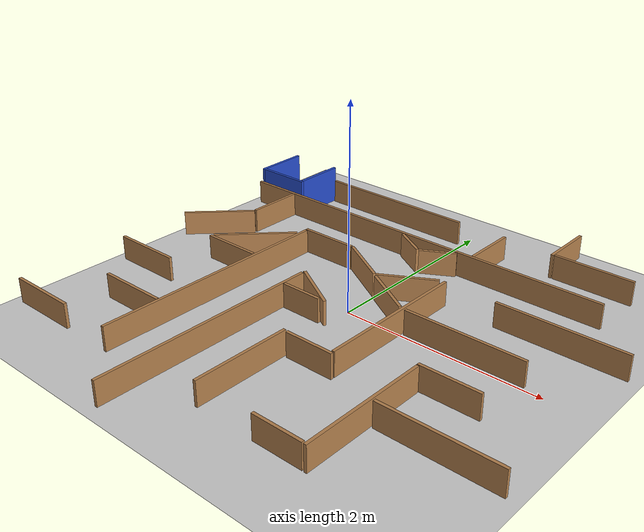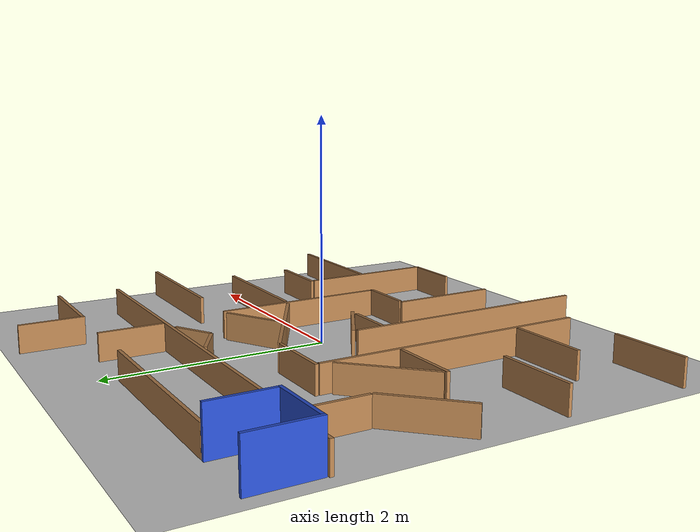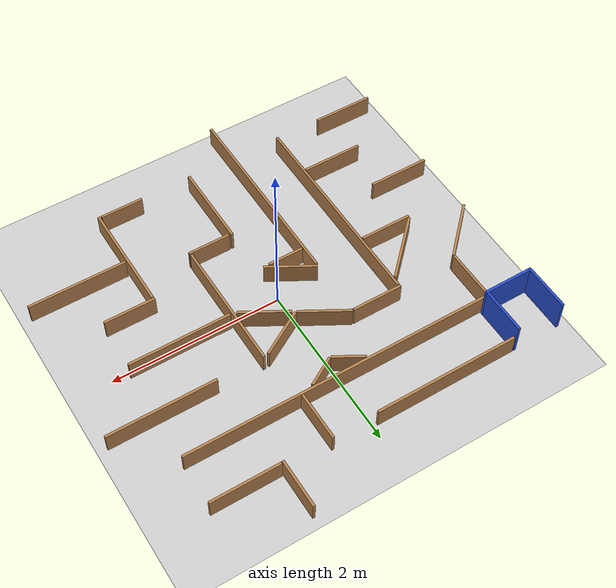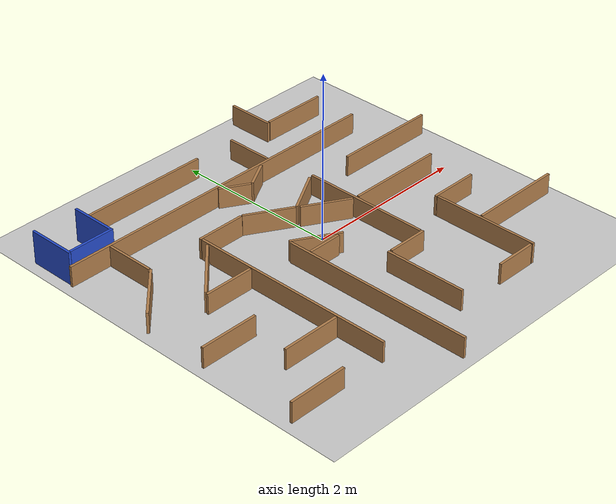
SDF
<?xml version="1.0"?>
<sdf version="1.4">
<model name="maze_nav_alt">
  <static>true</static>
    <link name="floor">
      <collision name="collision">
        <geometry>
          <plane>
            <normal>0 0 1</normal>
            <size>5.0 5.0</size>
          </plane>
        </geometry>
        <surface>
          <friction>
            <ode>
              <mu>100</mu>
              <mu2>50</mu2>
            </ode>
          </friction>
        </surface>
      </collision>
      <visual name="visual">
        <cast_shadows>false</cast_shadows>
        <geometry>
          <plane>
            <normal>0 0 1</normal>
            <size>5.0 5.0</size>
          </plane>
        </geometry>
        <material>
          <script>
            <uri>model://maze_nav_alt/materials/scripts</uri>
            <uri>model://maze_nav_alt/materials/textures</uri>
            <name>MazeNavAltFloor/Image</name>
          </script>
        </material>
      </visual>
    </link>
    <link name='start_zone'>
      <pose frame=''>-2.07315 1.57160 0.2 0 0 1.571</pose>
      <collision name='Right_Wall_Collision'>
        <geometry>
          <box>
            <size>0.57 0.03 0.4</size>
          </box>
        </geometry>
        <pose frame=''>0 0.2850 0 0 0 0</pose>
      </collision>
      <visual name='Right_Wall_Visual'>
        <pose frame=''>0 0.2850 0 0 0 0</pose>
        <geometry>
          <box>
            <size>0.57 0.03 0.4</size>
          </box>
        </geometry>
        <material>
          <script>
            <uri>file://media/materials/scripts/gazebo.material</uri>
            <name>Gazebo/Blue</name>
          </script>
        </material>
      </visual>
      <collision name='Back_Wall_Collision'>
        <geometry>
          <box>
            <size>0.57 0.03 0.4</size>
          </box>
        </geometry>
        <pose frame=''>-0.27 -0.015 0 0 0 1.571</pose>
      </collision>
      <visual name='Back_Wall_Visual'>
        <pose frame=''>-0.27 -0.015 0 0 0 1.571</pose>
        <geometry>
          <box>
            <size>0.57 0.03 0.4</size>
          </box>
        </geometry>
        <material>
          <script>
            <uri>file://media/materials/scripts/gazebo.material</uri>
            <name>Gazebo/Blue</name>
          </script>
        </material>
      </visual>
      <collision name='Left_Wall_Collision'>
        <geometry>
          <box>
            <size>0.54 0.03 0.4</size>
          </box>
        </geometry>
        <pose frame=''>0.015 -0.285 0 0 0 0</pose>
      </collision>
      <visual name='Left_Wall_Visual'>
        <pose frame=''>0.015 -0.285 0 0 0 0</pose>
        <geometry>
          <box>
            <size>0.54 0.03 0.4</size>
          </box>
        </geometry>
        <material>
          <script>
            <uri>file://media/materials/scripts/gazebo.material</uri>
            <name>Gazebo/Blue</name>
          </script>
        </material>
      </visual>
    </link>
    <link name='wall_00'>
      <pose frame=''>-0.90794 1.84160 0.125 0 0 0</pose>
      <collision name='coll'>
        <geometry>
          <box>
            <size>1.70 0.03 0.25</size>
          </box>
        </geometry>
      </collision>
      <visual name='vis'>
        <geometry>
          <box>
            <size>1.70 0.03 0.25</size>
          </box>
        </geometry>
        <material>
          <script>
            <uri>file://media/materials/scripts/gazebo.material</uri>
            <name>Gazebo/Wood</name>
          </script>
        </material>
      </visual>
    </link>
    <link name='wall_01'>
      <pose frame=''>-0.27063 1.26271 0.125 0 0 0</pose>
      <collision name='coll'>
        <geometry>
          <box>
            <size>4.23 0.03 0.25</size>
          </box>
        </geometry>
      </collision>
      <visual name='vis'>
        <geometry>
          <box>
            <size>4.23 0.03 0.25</size>
          </box>
        </geometry>
        <material>
          <script>
            <uri>file://media/materials/scripts/gazebo.material</uri>
            <name>Gazebo/Wood</name>
          </script>
        </material>
      </visual>
    </link>
    <link name='wall_02'>
      <pose frame=''>0.47706 1.56910 0.125 0 0 1.571</pose>
      <collision name='coll'>
        <geometry>
          <box>
            <size>0.575 0.03 0.25</size>
          </box>
        </geometry>
      </collision>
      <visual name='vis'>
        <geometry>
          <box>
            <size>0.575 0.03 0.25</size>
          </box>
        </geometry>
        <material>
          <script>
            <uri>file://media/materials/scripts/gazebo.material</uri>
            <name>Gazebo/Wood</name>
          </script>
        </material>
      </visual>
    </link>
    <link name='wall_03'>
      <pose frame=''>1.03136 2.09759 0.125 0 0 1.571</pose>
      <collision name='coll'>
        <geometry>
          <box>
            <size>0.57 0.03 0.25</size>
          </box>
        </geometry>
      </collision>
      <visual name='vis'>
        <geometry>
          <box>
            <size>0.57 0.03 0.25</size>
          </box>
        </geometry>
        <material>
          <script>
            <uri>file://media/materials/scripts/gazebo.material</uri>
            <name>Gazebo/Wood</name>
          </script>
        </material>
      </visual>
    </link>
    <link name='wall_04'>
      <pose frame=''>1.46037 1.82759 0.125 0 0 0</pose>
      <collision name='coll'>
        <geometry>
          <box>
            <size>0.81 0.03 0.25</size>
          </box>
        </geometry>
      </collision>
      <visual name='vis'>
        <geometry>
          <box>
            <size>0.81 0.03 0.25</size>
          </box>
        </geometry>
        <material>
          <script>
            <uri>file://media/materials/scripts/gazebo.material</uri>
            <name>Gazebo/Wood</name>
          </script>
        </material>
      </visual>
    </link>
    <link name='wall_06'>
      <pose frame=''>0.16822 1.14092 0.125 0 0 0.524</pose>
      <collision name='coll'>
        <geometry>
          <box>
            <size>0.37 0.03 0.25</size>
          </box>
        </geometry>
      </collision>
      <visual name='vis'>
        <geometry>
          <box>
            <size>0.37 0.03 0.25</size>
          </box>
        </geometry>
        <material>
          <script>
            <uri>file://media/materials/scripts/gazebo.material</uri>
            <name>Gazebo/Wood</name>
          </script>
        </material>
      </visual>
    </link>
    <link name='wall_07'>
      <pose frame=''>-0.16822 1.14092 0.125 0 0 -0.524</pose>
      <collision name='coll'>
        <geometry>
          <box>
            <size>0.37 0.03 0.25</size>
          </box>
        </geometry>
      </collision>
      <visual name='vis'>
        <geometry>
          <box>
            <size>0.37 0.03 0.25</size>
          </box>
        </geometry>
        <material>
          <script>
            <uri>file://media/materials/scripts/gazebo.material</uri>
            <name>Gazebo/Wood</name>
          </script>
        </material>
      </visual>
    </link>
    <link name='wall_08'>
      <pose frame=''>-1.85618 0.94927 0.125 0 0 0</pose>
      <collision name='coll'>
        <geometry>
          <box>
            <size>0.03 0.59 0.25</size>
          </box>
        </geometry>
      </collision>
      <visual name='vis'>
        <geometry>
          <box>
            <size>0.03 0.59 0.25</size>
          </box>
        </geometry>
        <material>
          <script>
            <uri>file://media/materials/scripts/gazebo.material</uri>
            <name>Gazebo/Wood</name>
          </script>
        </material>
      </visual>
    </link>
    <link name='wall_09'>
      <pose frame=''>-2.11341 0.37776 0.125 0 0 0.786</pose>
      <collision name='coll'>
        <geometry>
          <box>
            <size>0.74 0.03 0.25</size>
          </box>
        </geometry>
      </collision>
      <visual name='vis'>
        <geometry>
          <box>
            <size>0.74 0.03 0.25</size>
          </box>
        </geometry>
        <material>
          <script>
            <uri>file://media/materials/scripts/gazebo.material</uri>
            <name>Gazebo/Wood</name>
          </script>
        </material>
      </visual>
    </link>
    <link name='wall_0A'>
      <pose frame=''>-1.44489 0.24998 0.125 0 0 0.786</pose>
      <collision name='coll'>
        <geometry>
          <box>
            <size>0.84 0.03 0.25</size>
          </box>
        </geometry>
      </collision>
      <visual name='vis'>
        <geometry>
          <box>
            <size>0.84 0.03 0.25</size>
          </box>
        </geometry>
        <material>
          <script>
            <uri>file://media/materials/scripts/gazebo.material</uri>
            <name>Gazebo/Wood</name>
          </script>
        </material>
      </visual>
    </link>
    <link name='wall_0B'>
      <pose frame=''>-1.11688 -0.60361 0.125 0 0 0</pose>
      <collision name='coll'>
        <geometry>
          <box>
            <size>0.03 2.51 0.25</size>
          </box>
        </geometry>
      </collision>
      <visual name='vis'>
        <geometry>
          <box>
            <size>0.03 2.51 0.25</size>
          </box>
        </geometry>
        <material>
          <script>
            <uri>file://media/materials/scripts/gazebo.material</uri>
            <name>Gazebo/Wood</name>
          </script>
        </material>
      </visual>
    </link>
    <link name='wall_0C'>
      <pose frame=''>-0.83188 0.67462 0.125 0 0 0</pose>
      <collision name='coll'>
        <geometry>
          <box>
            <size>0.60 0.03 0.25</size>
          </box>
        </geometry>
      </collision>
      <visual name='vis'>
        <geometry>
          <box>
            <size>0.60 0.03 0.25</size>
          </box>
        </geometry>
        <material>
          <script>
            <uri>file://media/materials/scripts/gazebo.material</uri>
            <name>Gazebo/Wood</name>
          </script>
        </material>
      </visual>
    </link>
    <link name='wall_0D'>
      <pose frame=''>-0.26349 0.52913 0.125 0 0 -0.524</pose>
      <collision name='coll'>
        <geometry>
          <box>
            <size>0.59 0.03 0.25</size>
          </box>
        </geometry>
      </collision>
      <visual name='vis'>
        <geometry>
          <box>
            <size>0.59 0.03 0.25</size>
          </box>
        </geometry>
        <material>
          <script>
            <uri>file://media/materials/scripts/gazebo.material</uri>
            <name>Gazebo/Wood</name>
          </script>
        </material>
      </visual>
    </link>
    <link name='wall_0E'>
      <pose frame=''>0.26349 0.52913 0.125 0 0 0.524</pose>
      <collision name='coll'>
        <geometry>
          <box>
            <size>0.59 0.03 0.25</size>
          </box>
        </geometry>
      </collision>
      <visual name='vis'>
        <geometry>
          <box>
            <size>0.59 0.03 0.25</size>
          </box>
        </geometry>
        <material>
          <script>
            <uri>file://media/materials/scripts/gazebo.material</uri>
            <name>Gazebo/Wood</name>
          </script>
        </material>
      </visual>
    </link>
    <link name='wall_0F'>
      <pose frame=''>1.75188 0.67462 0.125 0 0 0</pose>
      <collision name='coll'>
        <geometry>
          <box>
            <size>1.27 0.03 0.25</size>
          </box>
        </geometry>
      </collision>
      <visual name='vis'>
        <geometry>
          <box>
            <size>1.27 0.03 0.25</size>
          </box>
        </geometry>
        <material>
          <script>
            <uri>file://media/materials/scripts/gazebo.material</uri>
            <name>Gazebo/Wood</name>
          </script>
        </material>
      </visual>
    </link>
    <link name='wall_15'>
      <pose frame=''>-1.44748 -0.07483 0.125 0 0 0</pose>
      <collision name='coll'>
        <geometry>
          <box>
            <size>0.61 0.03 0.25</size>
          </box>
        </geometry>
      </collision>
      <visual name='vis'>
        <geometry>
          <box>
            <size>0.61 0.03 0.25</size>
          </box>
        </geometry>
        <material>
          <script>
            <uri>file://media/materials/scripts/gazebo.material</uri>
            <name>Gazebo/Wood</name>
          </script>
        </material>
      </visual>
    </link>
    <link name='wall_17'>
      <pose frame=''>-2.02647 -0.66676 0.125 0 0 0</pose>
      <collision name='coll'>
        <geometry>
          <box>
            <size>0.715 0.03 0.25</size>
          </box>
        </geometry>
      </collision>
      <visual name='vis'>
        <geometry>
          <box>
            <size>0.715 0.03 0.25</size>
          </box>
        </geometry>
        <material>
          <script>
            <uri>file://media/materials/scripts/gazebo.material</uri>
            <name>Gazebo/Wood</name>
          </script>
        </material>
      </visual>
    </link>
    <link name='wall_18'>
      <pose frame=''>-1.4956 -1.25384 0.125 0 0 0</pose>
      <collision name='coll'>
        <geometry>
          <box>
            <size>0.715 0.03 0.25</size>
          </box>
        </geometry>
      </collision>
      <visual name='vis'>
        <geometry>
          <box>
            <size>0.715 0.03 0.25</size>
          </box>
        </geometry>
        <material>
          <script>
            <uri>file://media/materials/scripts/gazebo.material</uri>
            <name>Gazebo/Wood</name>
          </script>
        </material>
      </visual>
    </link>
    <link name='wall_19'>
      <pose frame=''>-2.02647 -1.84361 0.125 0 0 0</pose>
      <collision name='coll'>
        <geometry>
          <box>
            <size>0.715 0.03 0.25</size>
          </box>
        </geometry>
      </collision>
      <visual name='vis'>
        <geometry>
          <box>
            <size>0.715 0.03 0.25</size>
          </box>
        </geometry>
        <material>
          <script>
            <uri>file://media/materials/scripts/gazebo.material</uri>
            <name>Gazebo/Wood</name>
          </script>
        </material>
      </visual>
    </link>
    <link name='wall_1A'>
      <pose frame=''>1.48421 -0.55108 0.125 0 0 0</pose>
      <collision name='coll'>
        <geometry>
          <box>
            <size>0.60 0.03 0.25</size>
          </box>
        </geometry>
      </collision>
      <visual name='vis'>
        <geometry>
          <box>
            <size>0.60 0.03 0.25</size>
          </box>
        </geometry>
        <material>
          <script>
            <uri>file://media/materials/scripts/gazebo.material</uri>
            <name>Gazebo/Wood</name>
          </script>
        </material>
      </visual>
    </link>
    <link name='wall_1B'>
      <pose frame=''>0.285 0.205 0.125 0 0 -0.524</pose>
      <collision name='coll'>
        <geometry>
          <box>
            <size>0.59 0.03 0.25</size>
          </box>
        </geometry>
      </collision>
      <visual name='vis'>
        <geometry>
          <box>
            <size>0.59 0.03 0.25</size>
          </box>
        </geometry>
        <material>
          <script>
            <uri>file://media/materials/scripts/gazebo.material</uri>
            <name>Gazebo/Wood</name>
          </script>
        </material>
      </visual>
    </link>
    <link name='wall_1C'>
      <pose frame=''>1.2072 0.045 0.125 0 0 0</pose>
      <collision name='coll'>
        <geometry>
          <box>
            <size>1.2 0.03 0.25</size>
          </box>
        </geometry>
      </collision>
      <visual name='vis'>
        <geometry>
          <box>
            <size>1.2 0.03 0.25</size>
          </box>
        </geometry>
        <material>
          <script>
            <uri>file://media/materials/scripts/gazebo.material</uri>
            <name>Gazebo/Wood</name>
          </script>
        </material>
      </visual>
    </link>
    <link name='wall_1D'>
      <pose frame=''>0.57375 -0.08538 0.125 0 0 0</pose>
      <collision name='coll'>
        <geometry>
          <box>
            <size>0.03 1.55 0.25</size>
          </box>
        </geometry>
      </collision>
      <visual name='vis'>
        <geometry>
          <box>
            <size>0.03 1.55 0.25</size>
          </box>
        </geometry>
        <material>
          <script>
            <uri>file://media/materials/scripts/gazebo.material</uri>
            <name>Gazebo/Wood</name>
          </script>
        </material>
      </visual>
    </link>
    <link name='wall_1E'>
      <pose frame=''>0.05343 -1.37004 0.125 0 0 0</pose>
      <collision name='coll'>
        <geometry>
          <box>
            <size>0.03 0.99 0.25</size>
          </box>
        </geometry>
      </collision>
      <visual name='vis'>
        <geometry>
          <box>
            <size>0.03 0.99 0.25</size>
          </box>
        </geometry>
        <material>
          <script>
            <uri>file://media/materials/scripts/gazebo.material</uri>
            <name>Gazebo/Wood</name>
          </script>
        </material>
      </visual>
    </link>
    <link name='wall_1F'>
      <pose frame=''>0.91875 -1.85004 0.125 0 0 0</pose>
      <collision name='coll'>
        <geometry>
          <box>
            <size>0.5 0.03 0.25</size>
          </box>
        </geometry>
      </collision>
      <visual name='vis'>
        <geometry>
          <box>
            <size>0.5 0.03 0.25</size>
          </box>
        </geometry>
        <material>
          <script>
            <uri>file://media/materials/scripts/gazebo.material</uri>
            <name>Gazebo/Wood</name>
          </script>
        </material>
      </visual>
    </link>
    <link name='wall_20'>
      <pose frame=''>1.19921 -1.22004 0.125 0 0 0</pose>
      <collision name='coll'>
        <geometry>
          <box>
            <size>0.03 1.29 0.25</size>
          </box>
        </geometry>
      </collision>
      <visual name='vis'>
        <geometry>
          <box>
            <size>0.03 1.29 0.25</size>
          </box>
        </geometry>
        <material>
          <script>
            <uri>file://media/materials/scripts/gazebo.material</uri>
            <name>Gazebo/Wood</name>
          </script>
        </material>
      </visual>
    </link>
    <link name='wall_21'>
      <pose frame=''>1.80439 -1.15064 0.125 0 0 0</pose>
      <collision name='coll'>
        <geometry>
          <box>
            <size>1.15 0.03 0.25</size>
          </box>
        </geometry>
      </collision>
      <visual name='vis'>
        <geometry>
          <box>
            <size>1.15 0.03 0.25</size>
          </box>
        </geometry>
        <material>
          <script>
            <uri>file://media/materials/scripts/gazebo.material</uri>
            <name>Gazebo/Wood</name>
          </script>
        </material>
      </visual>
    </link>
    <link name='wall_22'>
      <pose frame=''>-0.52255 -1.21097 0.125 0 0 0</pose>
      <collision name='coll'>
        <geometry>
          <box>
            <size>0.03 2.33 0.25</size>
          </box>
        </geometry>
      </collision>
      <visual name='vis'>
        <geometry>
          <box>
            <size>0.03 2.33 0.25</size>
          </box>
        </geometry>
        <material>
          <script>
            <uri>file://media/materials/scripts/gazebo.material</uri>
            <name>Gazebo/Wood</name>
          </script>
        </material>
      </visual>
    </link>
    <link name='wall_23'>
      <pose frame=''>-0.29133 -0.30598 0.125 0 0 0</pose>
      <collision name='coll'>
        <geometry>
          <box>
            <size>0.42 0.03 0.25</size>
          </box>
        </geometry>
      </collision>
      <visual name='vis'>
        <geometry>
          <box>
            <size>0.42 0.03 0.25</size>
          </box>
        </geometry>
        <material>
          <script>
            <uri>file://media/materials/scripts/gazebo.material</uri>
            <name>Gazebo/Wood</name>
          </script>
        </material>
      </visual>
    </link>
    <link name='wall_24'>
      <pose frame=''>-0.26349 -0.16049 0.125 0 0 -0.524</pose>
      <collision name='coll'>
        <geometry>
          <box>
            <size>0.59 0.03 0.25</size>
          </box>
        </geometry>
      </collision>
      <visual name='vis'>
        <geometry>
          <box>
            <size>0.59 0.03 0.25</size>
          </box>
        </geometry>
        <material>
          <script>
            <uri>file://media/materials/scripts/gazebo.material</uri>
            <name>Gazebo/Wood</name>
          </script>
        </material>
      </visual>
    </link>
    <link name='wall_25'>
      <pose frame=''>0.33875 -0.88862 0.125 0 0 0</pose>
      <collision name='coll'>
        <geometry>
          <box>
            <size>0.5 0.03 0.25</size>
          </box>
        </geometry>
      </collision>
      <visual name='vis'>
        <geometry>
          <box>
            <size>0.5 0.03 0.25</size>
          </box>
        </geometry>
        <material>
          <script>
            <uri>file://media/materials/scripts/gazebo.material</uri>
            <name>Gazebo/Wood</name>
          </script>
        </material>
      </visual>
    </link>
  </model>
</sdf>
